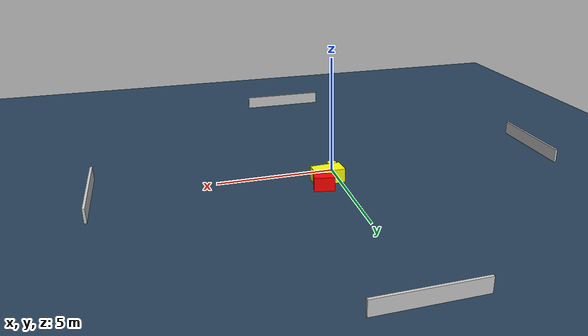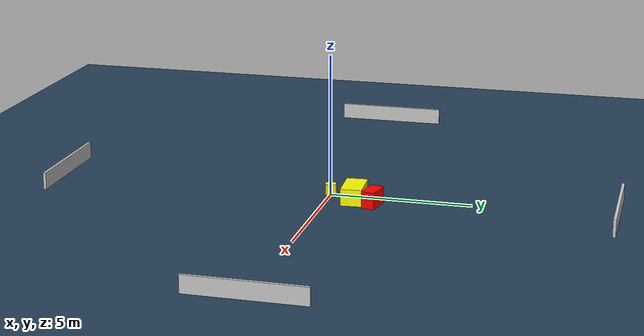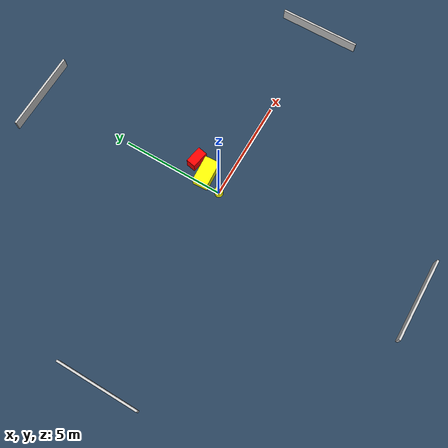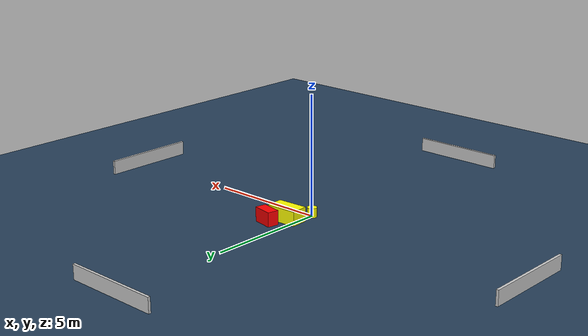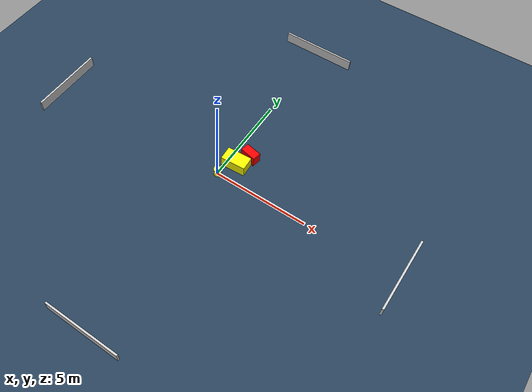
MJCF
<?xml version="1.0" ?>
<mujoco model="generated_environment">
  <option timestep="0.01" integrator="RK4" cone="elliptic"/>
  <default>
    <geom density="1"/>
  </default>
  <asset>
    <texture builtin="gradient" height="3072" name="skybox" rgb1="0.3 0.5 0.7" rgb2="0 0 0" type="skybox" width="512"/>
    <texture builtin="checker" height="300" name="groundplane" rgb1="0.2 0.3 0.4" rgb2="0.1 0.2 0.3" type="2d" width="300"/>
    <material name="groundplane" reflectance="0.2" texrepeat="5 5" texture="groundplane"/>
  </asset>
  <worldbody>
    <light dir="0 0 -1" directional="true" pos="0 0 1.5"/>
    <geom condim="3" friction="0.5 0.005 0.001" material="groundplane" name="floor" pos="0 0 0" size="0 0 0.05" type="plane"/>
    <body name="walls">
      <geom name="wall_1" condim="4" pos="-10.0 0.0 0.3" rgba="0.800000011920929 0.800000011920929 0.800000011920929 1.0" size="0.05 2.0 0.3" type="box"/>
      <geom name="wall_2" condim="4" pos="10.0 0.0 0.3" rgba="0.800000011920929 0.800000011920929 0.800000011920929 1.0" size="0.05 2.0 0.3" type="box"/>
      <geom name="wall_3" condim="4" pos="0.0 -10.0 0.3" rgba="0.800000011920929 0.800000011920929 0.800000011920929 1.0" size="2.0 0.05 0.3" type="box"/>
      <geom name="wall_4" condim="4" pos="0.0 10.0 0.3" rgba="0.800000011920929 0.800000011920929 0.800000011920929 1.0" size="2.0 0.05 0.3" type="box"/>
    </body>
    <body name="robot">
      <joint name="joint_x" type="slide" pos="0 0 0" axis="1 0 0"/>
      <joint name="joint_y" type="slide" pos="0 0 0" axis="0 1 0"/>
      <geom name="robot" type="cylinder" pos="0.0 0.0 0.2" size="0.2 0.2 0.0" mass="5.0" friction="1.0 0.005 0.0001" condim="4" rgba="1.0 1.0 0.0 1.0"/>
    </body>
    <body name="obstacle_1_movable">
      <geom name="obstacle_1_movable" condim="4" pos="0.4706489429351197 0.9576841850141034 0.3" euler="0 0 183.44298379268196" friction="0.0 0.005 0.001" rgba="1.0 1.0 0.0 1.0" size="0.6509759091484766 0.3719533376908607 0.3" type="box" mass="0.1"/>
      <joint type="free"/>
    </body>
    <body name="obstacle_2_static">
      <geom name="obstacle_2_static" condim="4" pos="0.8421006947054871 1.698541522788071 0.3" euler="0 0 259.0291475469187" friction="0.0 0.005 0.001" rgba="1.0 0.0 0.0 1.0" size="0.2327314931600858 0.42508336468422425 0.3" type="box"/>
    </body>
  </worldbody>
  <actuator>
    <motor name="actuator_x" joint="joint_x" gear="1" ctrlrange="-1 1"/>
    <motor name="actuator_y" joint="joint_y" gear="1" ctrlrange="-1 1"/>
  </actuator>
</mujoco>
